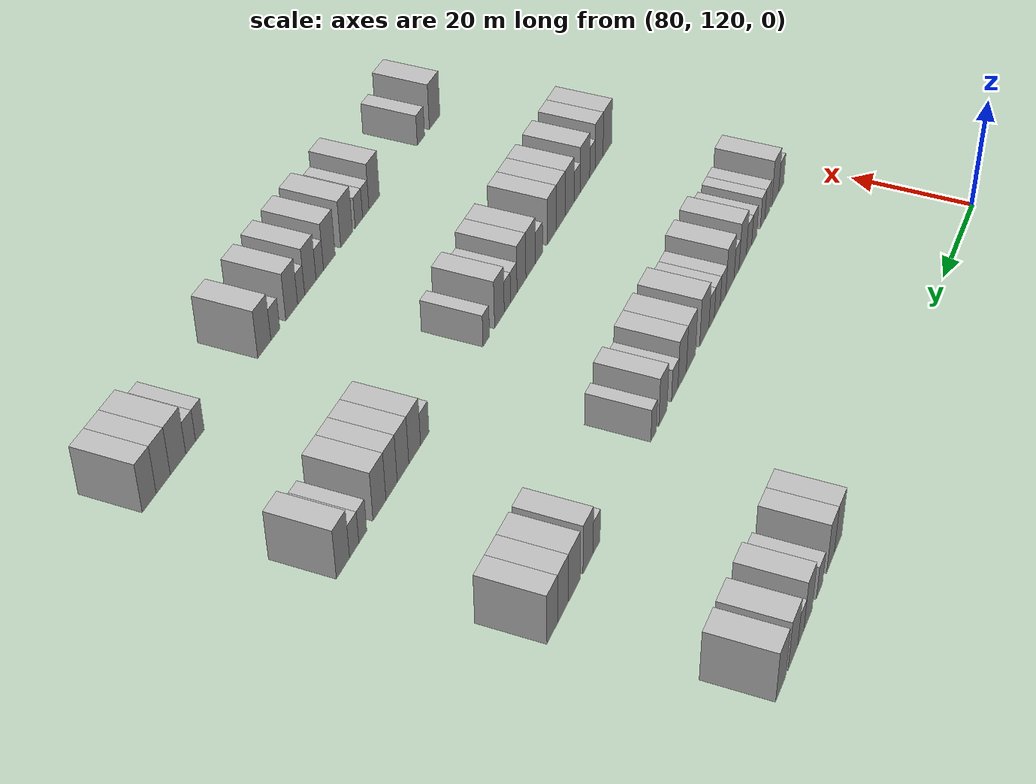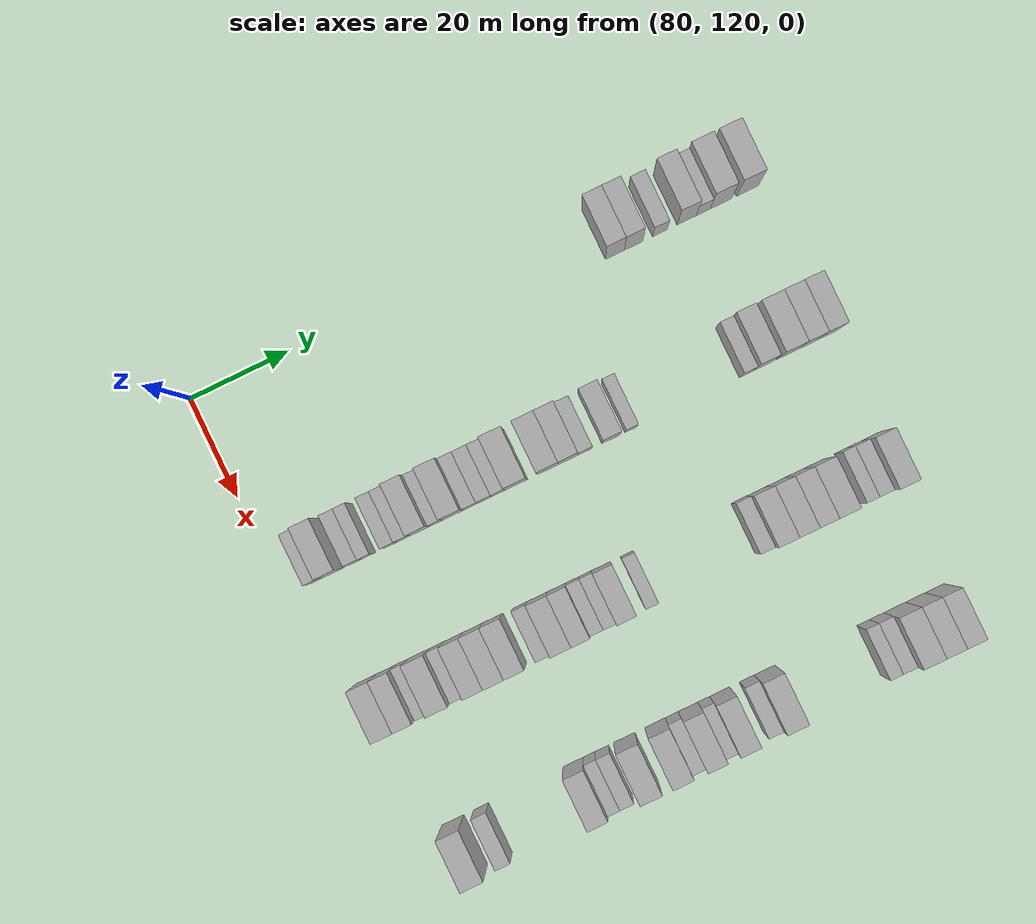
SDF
<sdf version="1.6">
 <world name="default">
  <model name="building_618">
   <static>1</static>
   <pose>85.0000 201.1404 0 0.000000 0.000000 0.000000</pose>
   <link name="link">
    <pose>0 0 4.50 0 0 0</pose>
    <collision name="collision"><geometry><box><size>10.0000 3.7968 9.0000</size></box></geometry></collision>
    <visual name="visual">
     <cast_shadows>0</cast_shadows>
     <geometry><box><size>10.0000 3.7968 9.0000</size></box></geometry>
     <material>
      <script>
       <uri>model://HANNAS_wall/materials/scripts</uri>
       <uri>model://HANNAS_wall/materials/textures</uri>
       <name>vrc/HANNAS_wall</name>
      </script>
     </material>
    </visual>
   </link>
  </model>
  <model name="building_619">
   <static>1</static>
   <pose>85.0000 204.8866 0 0.000000 0.000000 0.000000</pose>
   <link name="link">
    <pose>0 0 4.50 0 0 0</pose>
    <collision name="collision"><geometry><box><size>10.0000 3.6955 9.0000</size></box></geometry></collision>
    <visual name="visual">
     <cast_shadows>0</cast_shadows>
     <geometry><box><size>10.0000 3.6955 9.0000</size></box></geometry>
     <material>
      <script>
       <uri>model://HANNAS_wall/materials/scripts</uri>
       <uri>model://HANNAS_wall/materials/textures</uri>
       <name>vrc/HANNAS_wall</name>
      </script>
     </material>
    </visual>
   </link>
  </model>
  <model name="building_620">
   <static>1</static>
   <pose>85.0000 210.2190 0 0.000000 0.000000 0.000000</pose>
   <link name="link">
    <pose>0 0 3.00 0 0 0</pose>
    <collision name="collision"><geometry><box><size>10.0000 2.9693 6.0000</size></box></geometry></collision>
    <visual name="visual">
     <cast_shadows>0</cast_shadows>
     <geometry><box><size>10.0000 2.9693 6.0000</size></box></geometry>
     <material>
      <script>
       <uri>model://HANNAS_wall/materials/scripts</uri>
       <uri>model://HANNAS_wall/materials/textures</uri>
       <name>vrc/HANNAS_wall</name>
      </script>
     </material>
    </visual>
   </link>
  </model>
  <model name="building_621">
   <static>1</static>
   <pose>85.0000 215.6331 0 0.000000 0.000000 0.000000</pose>
   <link name="link">
    <pose>0 0 4.50 0 0 0</pose>
    <collision name="collision"><geometry><box><size>10.0000 3.8588 9.0000</size></box></geometry></collision>
    <visual name="visual">
     <cast_shadows>0</cast_shadows>
     <geometry><box><size>10.0000 3.8588 9.0000</size></box></geometry>
     <material>
      <script>
       <uri>model://HANNAS_wall/materials/scripts</uri>
       <uri>model://HANNAS_wall/materials/textures</uri>
       <name>vrc/HANNAS_wall</name>
      </script>
     </material>
    </visual>
   </link>
  </model>
  <model name="building_622">
   <static>1</static>
   <pose>85.0000 218.9543 0 0.000000 0.000000 0.000000</pose>
   <link name="link">
    <pose>0 0 3.00 0 0 0</pose>
    <collision name="collision"><geometry><box><size>10.0000 2.7835 6.0000</size></box></geometry></collision>
    <visual name="visual">
     <cast_shadows>0</cast_shadows>
     <geometry><box><size>10.0000 2.7835 6.0000</size></box></geometry>
     <material>
      <script>
       <uri>model://HANNAS_wall/materials/scripts</uri>
       <uri>model://HANNAS_wall/materials/textures</uri>
       <name>vrc/HANNAS_wall</name>
      </script>
     </material>
    </visual>
   </link>
  </model>
  <model name="building_623">
   <static>1</static>
   <pose>85.0000 222.5370 0 0.000000 0.000000 0.000000</pose>
   <link name="link">
    <pose>0 0 4.50 0 0 0</pose>
    <collision name="collision"><geometry><box><size>10.0000 4.3820 9.0000</size></box></geometry></collision>
    <visual name="visual">
     <cast_shadows>0</cast_shadows>
     <geometry><box><size>10.0000 4.3820 9.0000</size></box></geometry>
     <material>
      <script>
       <uri>model://HANNAS_wall/materials/scripts</uri>
       <uri>model://HANNAS_wall/materials/textures</uri>
       <name>vrc/HANNAS_wall</name>
      </script>
     </material>
    </visual>
   </link>
  </model>
  <model name="building_624">
   <static>1</static>
   <pose>85.0000 227.9235 0 0.000000 0.000000 0.000000</pose>
   <link name="link">
    <pose>0 0 4.50 0 0 0</pose>
    <collision name="collision"><geometry><box><size>10.0000 4.3911 9.0000</size></box></geometry></collision>
    <visual name="visual">
     <cast_shadows>0</cast_shadows>
     <geometry><box><size>10.0000 4.3911 9.0000</size></box></geometry>
     <material>
      <script>
       <uri>model://HANNAS_wall/materials/scripts</uri>
       <uri>model://HANNAS_wall/materials/textures</uri>
       <name>vrc/HANNAS_wall</name>
      </script>
     </material>
    </visual>
   </link>
  </model>
  <model name="building_833">
   <static>1</static>
   <pose>115.0000 126.8130 0 0.000000 0.000000 0.000000</pose>
   <link name="link">
    <pose>0 0 3.00 0 0 0</pose>
    <collision name="collision"><geometry><box><size>10.0000 2.8795 6.0000</size></box></geometry></collision>
    <visual name="visual">
     <cast_shadows>0</cast_shadows>
     <geometry><box><size>10.0000 2.8795 6.0000</size></box></geometry>
     <material>
      <script>
       <uri>model://HANNAS_wall/materials/scripts</uri>
       <uri>model://HANNAS_wall/materials/textures</uri>
       <name>vrc/HANNAS_wall</name>
      </script>
     </material>
    </visual>
   </link>
  </model>
  <model name="building_834">
   <static>1</static>
   <pose>115.0000 130.2182 0 0.000000 0.000000 0.000000</pose>
   <link name="link">
    <pose>0 0 4.50 0 0 0</pose>
    <collision name="collision"><geometry><box><size>10.0000 3.9309 9.0000</size></box></geometry></collision>
    <visual name="visual">
     <cast_shadows>0</cast_shadows>
     <geometry><box><size>10.0000 3.9309 9.0000</size></box></geometry>
     <material>
      <script>
       <uri>model://HANNAS_wall/materials/scripts</uri>
       <uri>model://HANNAS_wall/materials/textures</uri>
       <name>vrc/HANNAS_wall</name>
      </script>
     </material>
    </visual>
   </link>
  </model>
  <model name="building_835">
   <static>1</static>
   <pose>115.0000 134.5652 0 0.000000 0.000000 0.000000</pose>
   <link name="link">
    <pose>0 0 3.00 0 0 0</pose>
    <collision name="collision"><geometry><box><size>10.0000 2.7632 6.0000</size></box></geometry></collision>
    <visual name="visual">
     <cast_shadows>0</cast_shadows>
     <geometry><box><size>10.0000 2.7632 6.0000</size></box></geometry>
     <material>
      <script>
       <uri>model://HANNAS_wall/materials/scripts</uri>
       <uri>model://HANNAS_wall/materials/textures</uri>
       <name>vrc/HANNAS_wall</name>
      </script>
     </material>
    </visual>
   </link>
  </model>
  <model name="building_836">
   <static>1</static>
   <pose>115.0000 137.1600 0 0.000000 0.000000 0.000000</pose>
   <link name="link">
    <pose>0 0 3.00 0 0 0</pose>
    <collision name="collision"><geometry><box><size>10.0000 2.4263 6.0000</size></box></geometry></collision>
    <visual name="visual">
     <cast_shadows>0</cast_shadows>
     <geometry><box><size>10.0000 2.4263 6.0000</size></box></geometry>
     <material>
      <script>
       <uri>model://HANNAS_wall/materials/scripts</uri>
       <uri>model://HANNAS_wall/materials/textures</uri>
       <name>vrc/HANNAS_wall</name>
      </script>
     </material>
    </visual>
   </link>
  </model>
  <model name="building_837">
   <static>1</static>
   <pose>115.0000 141.7082 0 0.000000 0.000000 0.000000</pose>
   <link name="link">
    <pose>0 0 3.00 0 0 0</pose>
    <collision name="collision"><geometry><box><size>10.0000 2.6702 6.0000</size></box></geometry></collision>
    <visual name="visual">
     <cast_shadows>0</cast_shadows>
     <geometry><box><size>10.0000 2.6702 6.0000</size></box></geometry>
     <material>
      <script>
       <uri>model://HANNAS_wall/materials/scripts</uri>
       <uri>model://HANNAS_wall/materials/textures</uri>
       <name>vrc/HANNAS_wall</name>
      </script>
     </material>
    </visual>
   </link>
  </model>
  <model name="building_838">
   <static>1</static>
   <pose>115.0000 144.4526 0 0.000000 0.000000 0.000000</pose>
   <link name="link">
    <pose>0 0 3.00 0 0 0</pose>
    <collision name="collision"><geometry><box><size>10.0000 2.8187 6.0000</size></box></geometry></collision>
    <visual name="visual">
     <cast_shadows>0</cast_shadows>
     <geometry><box><size>10.0000 2.8187 6.0000</size></box></geometry>
     <material>
      <script>
       <uri>model://HANNAS_wall/materials/scripts</uri>
       <uri>model://HANNAS_wall/materials/textures</uri>
       <name>vrc/HANNAS_wall</name>
      </script>
     </material>
    </visual>
   </link>
  </model>
  <model name="building_839">
   <static>1</static>
   <pose>115.0000 147.7734 0 0.000000 0.000000 0.000000</pose>
   <link name="link">
    <pose>0 0 4.50 0 0 0</pose>
    <collision name="collision"><geometry><box><size>10.0000 3.8228 9.0000</size></box></geometry></collision>
    <visual name="visual">
     <cast_shadows>0</cast_shadows>
     <geometry><box><size>10.0000 3.8228 9.0000</size></box></geometry>
     <material>
      <script>
       <uri>model://HANNAS_wall/materials/scripts</uri>
       <uri>model://HANNAS_wall/materials/textures</uri>
       <name>vrc/HANNAS_wall</name>
      </script>
     </material>
    </visual>
   </link>
  </model>
  <model name="building_840">
   <static>1</static>
   <pose>115.0000 150.9600 0 0.000000 0.000000 0.000000</pose>
   <link name="link">
    <pose>0 0 3.00 0 0 0</pose>
    <collision name="collision"><geometry><box><size>10.0000 2.5504 6.0000</size></box></geometry></collision>
    <visual name="visual">
     <cast_shadows>0</cast_shadows>
     <geometry><box><size>10.0000 2.5504 6.0000</size></box></geometry>
     <material>
      <script>
       <uri>model://HANNAS_wall/materials/scripts</uri>
       <uri>model://HANNAS_wall/materials/textures</uri>
       <name>vrc/HANNAS_wall</name>
      </script>
     </material>
    </visual>
   </link>
  </model>
  <model name="building_841">
   <static>1</static>
   <pose>115.0000 154.3237 0 0.000000 0.000000 0.000000</pose>
   <link name="link">
    <pose>0 0 4.50 0 0 0</pose>
    <collision name="collision"><geometry><box><size>10.0000 4.1770 9.0000</size></box></geometry></collision>
    <visual name="visual">
     <cast_shadows>0</cast_shadows>
     <geometry><box><size>10.0000 4.1770 9.0000</size></box></geometry>
     <material>
      <script>
       <uri>model://HANNAS_wall/materials/scripts</uri>
       <uri>model://HANNAS_wall/materials/textures</uri>
       <name>vrc/HANNAS_wall</name>
      </script>
     </material>
    </visual>
   </link>
  </model>
  <model name="building_842">
   <static>1</static>
   <pose>115.0000 157.8071 0 0.000000 0.000000 0.000000</pose>
   <link name="link">
    <pose>0 0 3.00 0 0 0</pose>
    <collision name="collision"><geometry><box><size>10.0000 2.7897 6.0000</size></box></geometry></collision>
    <visual name="visual">
     <cast_shadows>0</cast_shadows>
     <geometry><box><size>10.0000 2.7897 6.0000</size></box></geometry>
     <material>
      <script>
       <uri>model://HANNAS_wall/materials/scripts</uri>
       <uri>model://HANNAS_wall/materials/textures</uri>
       <name>vrc/HANNAS_wall</name>
      </script>
     </material>
    </visual>
   </link>
  </model>
  <model name="building_843">
   <static>1</static>
   <pose>115.0000 160.6442 0 0.000000 0.000000 0.000000</pose>
   <link name="link">
    <pose>0 0 3.00 0 0 0</pose>
    <collision name="collision"><geometry><box><size>10.0000 2.8846 6.0000</size></box></geometry></collision>
    <visual name="visual">
     <cast_shadows>0</cast_shadows>
     <geometry><box><size>10.0000 2.8846 6.0000</size></box></geometry>
     <material>
      <script>
       <uri>model://HANNAS_wall/materials/scripts</uri>
       <uri>model://HANNAS_wall/materials/textures</uri>
       <name>vrc/HANNAS_wall</name>
      </script>
     </material>
    </visual>
   </link>
  </model>
  <model name="building_844">
   <static>1</static>
   <pose>115.0000 163.4074 0 0.000000 0.000000 0.000000</pose>
   <link name="link">
    <pose>0 0 3.00 0 0 0</pose>
    <collision name="collision"><geometry><box><size>10.0000 2.6419 6.0000</size></box></geometry></collision>
    <visual name="visual">
     <cast_shadows>0</cast_shadows>
     <geometry><box><size>10.0000 2.6419 6.0000</size></box></geometry>
     <material>
      <script>
       <uri>model://HANNAS_wall/materials/scripts</uri>
       <uri>model://HANNAS_wall/materials/textures</uri>
       <name>vrc/HANNAS_wall</name>
      </script>
     </material>
    </visual>
   </link>
  </model>
  <model name="building_845">
   <static>1</static>
   <pose>115.0000 166.9304 0 0.000000 0.000000 0.000000</pose>
   <link name="link">
    <pose>0 0 4.50 0 0 0</pose>
    <collision name="collision"><geometry><box><size>10.0000 4.4039 9.0000</size></box></geometry></collision>
    <visual name="visual">
     <cast_shadows>0</cast_shadows>
     <geometry><box><size>10.0000 4.4039 9.0000</size></box></geometry>
     <material>
      <script>
       <uri>model://HANNAS_wall/materials/scripts</uri>
       <uri>model://HANNAS_wall/materials/textures</uri>
       <name>vrc/HANNAS_wall</name>
      </script>
     </material>
    </visual>
   </link>
  </model>
  <model name="building_846">
   <static>1</static>
   <pose>115.0000 173.2552 0 0.000000 0.000000 0.000000</pose>
   <link name="link">
    <pose>0 0 4.50 0 0 0</pose>
    <collision name="collision"><geometry><box><size>10.0000 4.2457 9.0000</size></box></geometry></collision>
    <visual name="visual">
     <cast_shadows>0</cast_shadows>
     <geometry><box><size>10.0000 4.2457 9.0000</size></box></geometry>
     <material>
      <script>
       <uri>model://HANNAS_wall/materials/scripts</uri>
       <uri>model://HANNAS_wall/materials/textures</uri>
       <name>vrc/HANNAS_wall</name>
      </script>
     </material>
    </visual>
   </link>
  </model>
  <model name="building_847">
   <static>1</static>
   <pose>115.0000 177.3073 0 0.000000 0.000000 0.000000</pose>
   <link name="link">
    <pose>0 0 4.50 0 0 0</pose>
    <collision name="collision"><geometry><box><size>10.0000 3.8585 9.0000</size></box></geometry></collision>
    <visual name="visual">
     <cast_shadows>0</cast_shadows>
     <geometry><box><size>10.0000 3.8585 9.0000</size></box></geometry>
     <material>
      <script>
       <uri>model://HANNAS_wall/materials/scripts</uri>
       <uri>model://HANNAS_wall/materials/textures</uri>
       <name>vrc/HANNAS_wall</name>
      </script>
     </material>
    </visual>
   </link>
  </model>
  <model name="building_848">
   <static>1</static>
   <pose>115.0000 180.6676 0 0.000000 0.000000 0.000000</pose>
   <link name="link">
    <pose>0 0 3.00 0 0 0</pose>
    <collision name="collision"><geometry><box><size>10.0000 2.8622 6.0000</size></box></geometry></collision>
    <visual name="visual">
     <cast_shadows>0</cast_shadows>
     <geometry><box><size>10.0000 2.8622 6.0000</size></box></geometry>
     <material>
      <script>
       <uri>model://HANNAS_wall/materials/scripts</uri>
       <uri>model://HANNAS_wall/materials/textures</uri>
       <name>vrc/HANNAS_wall</name>
      </script>
     </material>
    </visual>
   </link>
  </model>
  <model name="building_849">
   <static>1</static>
   <pose>115.0000 185.9217 0 0.000000 0.000000 0.000000</pose>
   <link name="link">
    <pose>0 0 4.50 0 0 0</pose>
    <collision name="collision"><geometry><box><size>10.0000 3.6459 9.0000</size></box></geometry></collision>
    <visual name="visual">
     <cast_shadows>0</cast_shadows>
     <geometry><box><size>10.0000 3.6459 9.0000</size></box></geometry>
     <material>
      <script>
       <uri>model://HANNAS_wall/materials/scripts</uri>
       <uri>model://HANNAS_wall/materials/textures</uri>
       <name>vrc/HANNAS_wall</name>
      </script>
     </material>
    </visual>
   </link>
  </model>
  <model name="building_850">
   <static>1</static>
   <pose>115.0000 189.9450 0 0.000000 0.000000 0.000000</pose>
   <link name="link">
    <pose>0 0 3.00 0 0 0</pose>
    <collision name="collision"><geometry><box><size>10.0000 2.4007 6.0000</size></box></geometry></collision>
    <visual name="visual">
     <cast_shadows>0</cast_shadows>
     <geometry><box><size>10.0000 2.4007 6.0000</size></box></geometry>
     <material>
      <script>
       <uri>model://HANNAS_wall/materials/scripts</uri>
       <uri>model://HANNAS_wall/materials/textures</uri>
       <name>vrc/HANNAS_wall</name>
      </script>
     </material>
    </visual>
   </link>
  </model>
  <model name="building_851">
   <static>1</static>
   <pose>115.0000 213.2125 0 0.000000 0.000000 0.000000</pose>
   <link name="link">
    <pose>0 0 3.00 0 0 0</pose>
    <collision name="collision"><geometry><box><size>10.0000 2.7115 6.0000</size></box></geometry></collision>
    <visual name="visual">
     <cast_shadows>0</cast_shadows>
     <geometry><box><size>10.0000 2.7115 6.0000</size></box></geometry>
     <material>
      <script>
       <uri>model://HANNAS_wall/materials/scripts</uri>
       <uri>model://HANNAS_wall/materials/textures</uri>
       <name>vrc/HANNAS_wall</name>
      </script>
     </material>
    </visual>
   </link>
  </model>
  <model name="building_852">
   <static>1</static>
   <pose>115.0000 216.4924 0 0.000000 0.000000 0.000000</pose>
   <link name="link">
    <pose>0 0 4.50 0 0 0</pose>
    <collision name="collision"><geometry><box><size>10.0000 3.8482 9.0000</size></box></geometry></collision>
    <visual name="visual">
     <cast_shadows>0</cast_shadows>
     <geometry><box><size>10.0000 3.8482 9.0000</size></box></geometry>
     <material>
      <script>
       <uri>model://HANNAS_wall/materials/scripts</uri>
       <uri>model://HANNAS_wall/materials/textures</uri>
       <name>vrc/HANNAS_wall</name>
      </script>
     </material>
    </visual>
   </link>
  </model>
  <model name="building_853">
   <static>1</static>
   <pose>115.0000 221.6036 0 0.000000 0.000000 0.000000</pose>
   <link name="link">
    <pose>0 0 4.50 0 0 0</pose>
    <collision name="collision"><geometry><box><size>10.0000 4.3742 9.0000</size></box></geometry></collision>
    <visual name="visual">
     <cast_shadows>0</cast_shadows>
     <geometry><box><size>10.0000 4.3742 9.0000</size></box></geometry>
     <material>
      <script>
       <uri>model://HANNAS_wall/materials/scripts</uri>
       <uri>model://HANNAS_wall/materials/textures</uri>
       <name>vrc/HANNAS_wall</name>
      </script>
     </material>
    </visual>
   </link>
  </model>
  <model name="building_854">
   <static>1</static>
   <pose>115.0000 225.7387 0 0.000000 0.000000 0.000000</pose>
   <link name="link">
    <pose>0 0 4.50 0 0 0</pose>
    <collision name="collision"><geometry><box><size>10.0000 3.8961 9.0000</size></box></geometry></collision>
    <visual name="visual">
     <cast_shadows>0</cast_shadows>
     <geometry><box><size>10.0000 3.8961 9.0000</size></box></geometry>
     <material>
      <script>
       <uri>model://HANNAS_wall/materials/scripts</uri>
       <uri>model://HANNAS_wall/materials/textures</uri>
       <name>vrc/HANNAS_wall</name>
      </script>
     </material>
    </visual>
   </link>
  </model>
  <model name="building_855">
   <static>1</static>
   <pose>115.0000 229.5878 0 0.000000 0.000000 0.000000</pose>
   <link name="link">
    <pose>0 0 4.50 0 0 0</pose>
    <collision name="collision"><geometry><box><size>10.0000 3.8019 9.0000</size></box></geometry></collision>
    <visual name="visual">
     <cast_shadows>0</cast_shadows>
     <geometry><box><size>10.0000 3.8019 9.0000</size></box></geometry>
     <material>
      <script>
       <uri>model://HANNAS_wall/materials/scripts</uri>
       <uri>model://HANNAS_wall/materials/textures</uri>
       <name>vrc/HANNAS_wall</name>
      </script>
     </material>
    </visual>
   </link>
  </model>
  <model name="building_1059">
   <static>1</static>
   <pose>145.0000 126.9567 0 0.000000 0.000000 0.000000</pose>
   <link name="link">
    <pose>0 0 4.50 0 0 0</pose>
    <collision name="collision"><geometry><box><size>10.0000 4.1968 9.0000</size></box></geometry></collision>
    <visual name="visual">
     <cast_shadows>0</cast_shadows>
     <geometry><box><size>10.0000 4.1968 9.0000</size></box></geometry>
     <material>
      <script>
       <uri>model://HANNAS_wall/materials/scripts</uri>
       <uri>model://HANNAS_wall/materials/textures</uri>
       <name>vrc/HANNAS_wall</name>
      </script>
     </material>
    </visual>
   </link>
  </model>
  <model name="building_1060">
   <static>1</static>
   <pose>145.0000 130.9338 0 0.000000 0.000000 0.000000</pose>
   <link name="link">
    <pose>0 0 4.50 0 0 0</pose>
    <collision name="collision"><geometry><box><size>10.0000 3.7574 9.0000</size></box></geometry></collision>
    <visual name="visual">
     <cast_shadows>0</cast_shadows>
     <geometry><box><size>10.0000 3.7574 9.0000</size></box></geometry>
     <material>
      <script>
       <uri>model://HANNAS_wall/materials/scripts</uri>
       <uri>model://HANNAS_wall/materials/textures</uri>
       <name>vrc/HANNAS_wall</name>
      </script>
     </material>
    </visual>
   </link>
  </model>
  <model name="building_1061">
   <static>1</static>
   <pose>145.0000 134.0910 0 0.000000 0.000000 0.000000</pose>
   <link name="link">
    <pose>0 0 3.00 0 0 0</pose>
    <collision name="collision"><geometry><box><size>10.0000 2.5570 6.0000</size></box></geometry></collision>
    <visual name="visual">
     <cast_shadows>0</cast_shadows>
     <geometry><box><size>10.0000 2.5570 6.0000</size></box></geometry>
     <material>
      <script>
       <uri>model://HANNAS_wall/materials/scripts</uri>
       <uri>model://HANNAS_wall/materials/textures</uri>
       <name>vrc/HANNAS_wall</name>
      </script>
     </material>
    </visual>
   </link>
  </model>
  <model name="building_1062">
   <static>1</static>
   <pose>145.0000 137.5395 0 0.000000 0.000000 0.000000</pose>
   <link name="link">
    <pose>0 0 4.50 0 0 0</pose>
    <collision name="collision"><geometry><box><size>10.0000 4.3401 9.0000</size></box></geometry></collision>
    <visual name="visual">
     <cast_shadows>0</cast_shadows>
     <geometry><box><size>10.0000 4.3401 9.0000</size></box></geometry>
     <material>
      <script>
       <uri>model://HANNAS_wall/materials/scripts</uri>
       <uri>model://HANNAS_wall/materials/textures</uri>
       <name>vrc/HANNAS_wall</name>
      </script>
     </material>
    </visual>
   </link>
  </model>
  <model name="building_1063">
   <static>1</static>
   <pose>145.0000 141.1233 0 0.000000 0.000000 0.000000</pose>
   <link name="link">
    <pose>0 0 3.00 0 0 0</pose>
    <collision name="collision"><geometry><box><size>10.0000 2.8275 6.0000</size></box></geometry></collision>
    <visual name="visual">
     <cast_shadows>0</cast_shadows>
     <geometry><box><size>10.0000 2.8275 6.0000</size></box></geometry>
     <material>
      <script>
       <uri>model://HANNAS_wall/materials/scripts</uri>
       <uri>model://HANNAS_wall/materials/textures</uri>
       <name>vrc/HANNAS_wall</name>
      </script>
     </material>
    </visual>
   </link>
  </model>
  <model name="building_1064">
   <static>1</static>
   <pose>145.0000 144.5191 0 0.000000 0.000000 0.000000</pose>
   <link name="link">
    <pose>0 0 4.50 0 0 0</pose>
    <collision name="collision"><geometry><box><size>10.0000 3.9641 9.0000</size></box></geometry></collision>
    <visual name="visual">
     <cast_shadows>0</cast_shadows>
     <geometry><box><size>10.0000 3.9641 9.0000</size></box></geometry>
     <material>
      <script>
       <uri>model://HANNAS_wall/materials/scripts</uri>
       <uri>model://HANNAS_wall/materials/textures</uri>
       <name>vrc/HANNAS_wall</name>
      </script>
     </material>
    </visual>
   </link>
  </model>
  <model name="building_1065">
   <static>1</static>
   <pose>145.0000 148.5007 0 0.000000 0.000000 0.000000</pose>
   <link name="link">
    <pose>0 0 4.50 0 0 0</pose>
    <collision name="collision"><geometry><box><size>10.0000 3.9990 9.0000</size></box></geometry></collision>
    <visual name="visual">
     <cast_shadows>0</cast_shadows>
     <geometry><box><size>10.0000 3.9990 9.0000</size></box></geometry>
     <material>
      <script>
       <uri>model://HANNAS_wall/materials/scripts</uri>
       <uri>model://HANNAS_wall/materials/textures</uri>
       <name>vrc/HANNAS_wall</name>
      </script>
     </material>
    </visual>
   </link>
  </model>
  <model name="building_1066">
   <static>1</static>
   <pose>145.0000 152.4788 0 0.000000 0.000000 0.000000</pose>
   <link name="link">
    <pose>0 0 4.50 0 0 0</pose>
    <collision name="collision"><geometry><box><size>10.0000 3.9574 9.0000</size></box></geometry></collision>
    <visual name="visual">
     <cast_shadows>0</cast_shadows>
     <geometry><box><size>10.0000 3.9574 9.0000</size></box></geometry>
     <material>
      <script>
       <uri>model://HANNAS_wall/materials/scripts</uri>
       <uri>model://HANNAS_wall/materials/textures</uri>
       <name>vrc/HANNAS_wall</name>
      </script>
     </material>
    </visual>
   </link>
  </model>
  <model name="building_1067">
   <static>1</static>
   <pose>145.0000 157.9390 0 0.000000 0.000000 0.000000</pose>
   <link name="link">
    <pose>0 0 3.00 0 0 0</pose>
    <collision name="collision"><geometry><box><size>10.0000 2.9630 6.0000</size></box></geometry></collision>
    <visual name="visual">
     <cast_shadows>0</cast_shadows>
     <geometry><box><size>10.0000 2.9630 6.0000</size></box></geometry>
     <material>
      <script>
       <uri>model://HANNAS_wall/materials/scripts</uri>
       <uri>model://HANNAS_wall/materials/textures</uri>
       <name>vrc/HANNAS_wall</name>
      </script>
     </material>
    </visual>
   </link>
  </model>
  <model name="building_1068">
   <static>1</static>
   <pose>145.0000 161.4525 0 0.000000 0.000000 0.000000</pose>
   <link name="link">
    <pose>0 0 4.50 0 0 0</pose>
    <collision name="collision"><geometry><box><size>10.0000 4.0641 9.0000</size></box></geometry></collision>
    <visual name="visual">
     <cast_shadows>0</cast_shadows>
     <geometry><box><size>10.0000 4.0641 9.0000</size></box></geometry>
     <material>
      <script>
       <uri>model://HANNAS_wall/materials/scripts</uri>
       <uri>model://HANNAS_wall/materials/textures</uri>
       <name>vrc/HANNAS_wall</name>
      </script>
     </material>
    </visual>
   </link>
  </model>
  <model name="building_1069">
   <static>1</static>
   <pose>145.0000 165.3126 0 0.000000 0.000000 0.000000</pose>
   <link name="link">
    <pose>0 0 4.50 0 0 0</pose>
    <collision name="collision"><geometry><box><size>10.0000 3.6560 9.0000</size></box></geometry></collision>
    <visual name="visual">
     <cast_shadows>0</cast_shadows>
     <geometry><box><size>10.0000 3.6560 9.0000</size></box></geometry>
     <material>
      <script>
       <uri>model://HANNAS_wall/materials/scripts</uri>
       <uri>model://HANNAS_wall/materials/textures</uri>
       <name>vrc/HANNAS_wall</name>
      </script>
     </material>
    </visual>
   </link>
  </model>
  <model name="building_1070">
   <static>1</static>
   <pose>145.0000 168.4575 0 0.000000 0.000000 0.000000</pose>
   <link name="link">
    <pose>0 0 3.00 0 0 0</pose>
    <collision name="collision"><geometry><box><size>10.0000 2.6338 6.0000</size></box></geometry></collision>
    <visual name="visual">
     <cast_shadows>0</cast_shadows>
     <geometry><box><size>10.0000 2.6338 6.0000</size></box></geometry>
     <material>
      <script>
       <uri>model://HANNAS_wall/materials/scripts</uri>
       <uri>model://HANNAS_wall/materials/textures</uri>
       <name>vrc/HANNAS_wall</name>
      </script>
     </material>
    </visual>
   </link>
  </model>
  <model name="building_1071">
   <static>1</static>
   <pose>145.0000 171.0431 0 0.000000 0.000000 0.000000</pose>
   <link name="link">
    <pose>0 0 3.00 0 0 0</pose>
    <collision name="collision"><geometry><box><size>10.0000 2.5373 6.0000</size></box></geometry></collision>
    <visual name="visual">
     <cast_shadows>0</cast_shadows>
     <geometry><box><size>10.0000 2.5373 6.0000</size></box></geometry>
     <material>
      <script>
       <uri>model://HANNAS_wall/materials/scripts</uri>
       <uri>model://HANNAS_wall/materials/textures</uri>
       <name>vrc/HANNAS_wall</name>
      </script>
     </material>
    </visual>
   </link>
  </model>
  <model name="building_1072">
   <static>1</static>
   <pose>145.0000 174.2312 0 0.000000 0.000000 0.000000</pose>
   <link name="link">
    <pose>0 0 4.50 0 0 0</pose>
    <collision name="collision"><geometry><box><size>10.0000 3.8390 9.0000</size></box></geometry></collision>
    <visual name="visual">
     <cast_shadows>0</cast_shadows>
     <geometry><box><size>10.0000 3.8390 9.0000</size></box></geometry>
     <material>
      <script>
       <uri>model://HANNAS_wall/materials/scripts</uri>
       <uri>model://HANNAS_wall/materials/textures</uri>
       <name>vrc/HANNAS_wall</name>
      </script>
     </material>
    </visual>
   </link>
  </model>
  <model name="building_1073">
   <static>1</static>
   <pose>145.0000 179.4030 0 0.000000 0.000000 0.000000</pose>
   <link name="link">
    <pose>0 0 3.00 0 0 0</pose>
    <collision name="collision"><geometry><box><size>10.0000 2.5045 6.0000</size></box></geometry></collision>
    <visual name="visual">
     <cast_shadows>0</cast_shadows>
     <geometry><box><size>10.0000 2.5045 6.0000</size></box></geometry>
     <material>
      <script>
       <uri>model://HANNAS_wall/materials/scripts</uri>
       <uri>model://HANNAS_wall/materials/textures</uri>
       <name>vrc/HANNAS_wall</name>
      </script>
     </material>
    </visual>
   </link>
  </model>
  <model name="building_1074">
   <static>1</static>
   <pose>145.0000 202.0396 0 0.000000 0.000000 0.000000</pose>
   <link name="link">
    <pose>0 0 3.00 0 0 0</pose>
    <collision name="collision"><geometry><box><size>10.0000 2.9229 6.0000</size></box></geometry></collision>
    <visual name="visual">
     <cast_shadows>0</cast_shadows>
     <geometry><box><size>10.0000 2.9229 6.0000</size></box></geometry>
     <material>
      <script>
       <uri>model://HANNAS_wall/materials/scripts</uri>
       <uri>model://HANNAS_wall/materials/textures</uri>
       <name>vrc/HANNAS_wall</name>
      </script>
     </material>
    </visual>
   </link>
  </model>
  <model name="building_1075">
   <static>1</static>
   <pose>145.0000 205.5326 0 0.000000 0.000000 0.000000</pose>
   <link name="link">
    <pose>0 0 4.50 0 0 0</pose>
    <collision name="collision"><geometry><box><size>10.0000 4.0632 9.0000</size></box></geometry></collision>
    <visual name="visual">
     <cast_shadows>0</cast_shadows>
     <geometry><box><size>10.0000 4.0632 9.0000</size></box></geometry>
     <material>
      <script>
       <uri>model://HANNAS_wall/materials/scripts</uri>
       <uri>model://HANNAS_wall/materials/textures</uri>
       <name>vrc/HANNAS_wall</name>
      </script>
     </material>
    </visual>
   </link>
  </model>
  <model name="building_1076">
   <static>1</static>
   <pose>145.0000 209.5156 0 0.000000 0.000000 0.000000</pose>
   <link name="link">
    <pose>0 0 4.50 0 0 0</pose>
    <collision name="collision"><geometry><box><size>10.0000 3.9028 9.0000</size></box></geometry></collision>
    <visual name="visual">
     <cast_shadows>0</cast_shadows>
     <geometry><box><size>10.0000 3.9028 9.0000</size></box></geometry>
     <material>
      <script>
       <uri>model://HANNAS_wall/materials/scripts</uri>
       <uri>model://HANNAS_wall/materials/textures</uri>
       <name>vrc/HANNAS_wall</name>
      </script>
     </material>
    </visual>
   </link>
  </model>
  <model name="building_1077">
   <static>1</static>
   <pose>145.0000 213.3428 0 0.000000 0.000000 0.000000</pose>
   <link name="link">
    <pose>0 0 4.50 0 0 0</pose>
    <collision name="collision"><geometry><box><size>10.0000 3.7516 9.0000</size></box></geometry></collision>
    <visual name="visual">
     <cast_shadows>0</cast_shadows>
     <geometry><box><size>10.0000 3.7516 9.0000</size></box></geometry>
     <material>
      <script>
       <uri>model://HANNAS_wall/materials/scripts</uri>
       <uri>model://HANNAS_wall/materials/textures</uri>
       <name>vrc/HANNAS_wall</name>
      </script>
     </material>
    </visual>
   </link>
  </model>
  <model name="building_1078">
   <static>1</static>
   <pose>145.0000 217.3261 0 0.000000 0.000000 0.000000</pose>
   <link name="link">
    <pose>0 0 4.50 0 0 0</pose>
    <collision name="collision"><geometry><box><size>10.0000 4.2150 9.0000</size></box></geometry></collision>
    <visual name="visual">
     <cast_shadows>0</cast_shadows>
     <geometry><box><size>10.0000 4.2150 9.0000</size></box></geometry>
     <material>
      <script>
       <uri>model://HANNAS_wall/materials/scripts</uri>
       <uri>model://HANNAS_wall/materials/textures</uri>
       <name>vrc/HANNAS_wall</name>
      </script>
     </material>
    </visual>
   </link>
  </model>
  <model name="building_1079">
   <static>1</static>
   <pose>145.0000 222.6815 0 0.000000 0.000000 0.000000</pose>
   <link name="link">
    <pose>0 0 3.00 0 0 0</pose>
    <collision name="collision"><geometry><box><size>10.0000 2.4959 6.0000</size></box></geometry></collision>
    <visual name="visual">
     <cast_shadows>0</cast_shadows>
     <geometry><box><size>10.0000 2.4959 6.0000</size></box></geometry>
     <material>
      <script>
       <uri>model://HANNAS_wall/materials/scripts</uri>
       <uri>model://HANNAS_wall/materials/textures</uri>
       <name>vrc/HANNAS_wall</name>
      </script>
     </material>
    </visual>
   </link>
  </model>
  <model name="building_1080">
   <static>1</static>
   <pose>145.0000 225.3848 0 0.000000 0.000000 0.000000</pose>
   <link name="link">
    <pose>0 0 3.00 0 0 0</pose>
    <collision name="collision"><geometry><box><size>10.0000 2.9105 6.0000</size></box></geometry></collision>
    <visual name="visual">
     <cast_shadows>0</cast_shadows>
     <geometry><box><size>10.0000 2.9105 6.0000</size></box></geometry>
     <material>
      <script>
       <uri>model://HANNAS_wall/materials/scripts</uri>
       <uri>model://HANNAS_wall/materials/textures</uri>
       <name>vrc/HANNAS_wall</name>
      </script>
     </material>
    </visual>
   </link>
  </model>
  <model name="building_1081">
   <static>1</static>
   <pose>145.0000 228.8648 0 0.000000 0.000000 0.000000</pose>
   <link name="link">
    <pose>0 0 4.50 0 0 0</pose>
    <collision name="collision"><geometry><box><size>10.0000 4.0496 9.0000</size></box></geometry></collision>
    <visual name="visual">
     <cast_shadows>0</cast_shadows>
     <geometry><box><size>10.0000 4.0496 9.0000</size></box></geometry>
     <material>
      <script>
       <uri>model://HANNAS_wall/materials/scripts</uri>
       <uri>model://HANNAS_wall/materials/textures</uri>
       <name>vrc/HANNAS_wall</name>
      </script>
     </material>
    </visual>
   </link>
  </model>
  <model name="building_1287">
   <static>1</static>
   <pose>175.0000 129.9083 0 0.000000 0.000000 0.000000</pose>
   <link name="link">
    <pose>0 0 4.50 0 0 0</pose>
    <collision name="collision"><geometry><box><size>10.0000 4.4416 9.0000</size></box></geometry></collision>
    <visual name="visual">
     <cast_shadows>0</cast_shadows>
     <geometry><box><size>10.0000 4.4416 9.0000</size></box></geometry>
     <material>
      <script>
       <uri>model://HANNAS_wall/materials/scripts</uri>
       <uri>model://HANNAS_wall/materials/textures</uri>
       <name>vrc/HANNAS_wall</name>
      </script>
     </material>
    </visual>
   </link>
  </model>
  <model name="building_1288">
   <static>1</static>
   <pose>175.0000 135.6272 0 0.000000 0.000000 0.000000</pose>
   <link name="link">
    <pose>0 0 3.00 0 0 0</pose>
    <collision name="collision"><geometry><box><size>10.0000 2.9961 6.0000</size></box></geometry></collision>
    <visual name="visual">
     <cast_shadows>0</cast_shadows>
     <geometry><box><size>10.0000 2.9961 6.0000</size></box></geometry>
     <material>
      <script>
       <uri>model://HANNAS_wall/materials/scripts</uri>
       <uri>model://HANNAS_wall/materials/textures</uri>
       <name>vrc/HANNAS_wall</name>
      </script>
     </material>
    </visual>
   </link>
  </model>
  <model name="building_1289">
   <static>1</static>
   <pose>175.0000 154.1642 0 0.000000 0.000000 0.000000</pose>
   <link name="link">
    <pose>0 0 4.50 0 0 0</pose>
    <collision name="collision"><geometry><box><size>10.0000 4.0259 9.0000</size></box></geometry></collision>
    <visual name="visual">
     <cast_shadows>0</cast_shadows>
     <geometry><box><size>10.0000 4.0259 9.0000</size></box></geometry>
     <material>
      <script>
       <uri>model://HANNAS_wall/materials/scripts</uri>
       <uri>model://HANNAS_wall/materials/textures</uri>
       <name>vrc/HANNAS_wall</name>
      </script>
     </material>
    </visual>
   </link>
  </model>
  <model name="building_1290">
   <static>1</static>
   <pose>175.0000 157.3793 0 0.000000 0.000000 0.000000</pose>
   <link name="link">
    <pose>0 0 3.00 0 0 0</pose>
    <collision name="collision"><geometry><box><size>10.0000 2.4044 6.0000</size></box></geometry></collision>
    <visual name="visual">
     <cast_shadows>0</cast_shadows>
     <geometry><box><size>10.0000 2.4044 6.0000</size></box></geometry>
     <material>
      <script>
       <uri>model://HANNAS_wall/materials/scripts</uri>
       <uri>model://HANNAS_wall/materials/textures</uri>
       <name>vrc/HANNAS_wall</name>
      </script>
     </material>
    </visual>
   </link>
  </model>
  <model name="building_1291">
   <static>1</static>
   <pose>175.0000 159.9736 0 0.000000 0.000000 0.000000</pose>
   <link name="link">
    <pose>0 0 3.00 0 0 0</pose>
    <collision name="collision"><geometry><box><size>10.0000 2.7842 6.0000</size></box></geometry></collision>
    <visual name="visual">
     <cast_shadows>0</cast_shadows>
     <geometry><box><size>10.0000 2.7842 6.0000</size></box></geometry>
     <material>
      <script>
       <uri>model://HANNAS_wall/materials/scripts</uri>
       <uri>model://HANNAS_wall/materials/textures</uri>
       <name>vrc/HANNAS_wall</name>
      </script>
     </material>
    </visual>
   </link>
  </model>
  <model name="building_1292">
   <static>1</static>
   <pose>175.0000 164.5185 0 0.000000 0.000000 0.000000</pose>
   <link name="link">
    <pose>0 0 4.50 0 0 0</pose>
    <collision name="collision"><geometry><box><size>10.0000 4.3055 9.0000</size></box></geometry></collision>
    <visual name="visual">
     <cast_shadows>0</cast_shadows>
     <geometry><box><size>10.0000 4.3055 9.0000</size></box></geometry>
     <material>
      <script>
       <uri>model://HANNAS_wall/materials/scripts</uri>
       <uri>model://HANNAS_wall/materials/textures</uri>
       <name>vrc/HANNAS_wall</name>
      </script>
     </material>
    </visual>
   </link>
  </model>
  <model name="building_1293">
   <static>1</static>
   <pose>175.0000 170.7411 0 0.000000 0.000000 0.000000</pose>
   <link name="link">
    <pose>0 0 4.50 0 0 0</pose>
    <collision name="collision"><geometry><box><size>10.0000 4.1398 9.0000</size></box></geometry></collision>
    <visual name="visual">
     <cast_shadows>0</cast_shadows>
     <geometry><box><size>10.0000 4.1398 9.0000</size></box></geometry>
     <material>
      <script>
       <uri>model://HANNAS_wall/materials/scripts</uri>
       <uri>model://HANNAS_wall/materials/textures</uri>
       <name>vrc/HANNAS_wall</name>
      </script>
     </material>
    </visual>
   </link>
  </model>
  <model name="building_1294">
   <static>1</static>
   <pose>175.0000 174.1256 0 0.000000 0.000000 0.000000</pose>
   <link name="link">
    <pose>0 0 3.00 0 0 0</pose>
    <collision name="collision"><geometry><box><size>10.0000 2.6292 6.0000</size></box></geometry></collision>
    <visual name="visual">
     <cast_shadows>0</cast_shadows>
     <geometry><box><size>10.0000 2.6292 6.0000</size></box></geometry>
     <material>
      <script>
       <uri>model://HANNAS_wall/materials/scripts</uri>
       <uri>model://HANNAS_wall/materials/textures</uri>
       <name>vrc/HANNAS_wall</name>
      </script>
     </material>
    </visual>
   </link>
  </model>
  <model name="building_1295">
   <static>1</static>
   <pose>175.0000 177.4079 0 0.000000 0.000000 0.000000</pose>
   <link name="link">
    <pose>0 0 4.50 0 0 0</pose>
    <collision name="collision"><geometry><box><size>10.0000 3.9355 9.0000</size></box></geometry></collision>
    <visual name="visual">
     <cast_shadows>0</cast_shadows>
     <geometry><box><size>10.0000 3.9355 9.0000</size></box></geometry>
     <material>
      <script>
       <uri>model://HANNAS_wall/materials/scripts</uri>
       <uri>model://HANNAS_wall/materials/textures</uri>
       <name>vrc/HANNAS_wall</name>
      </script>
     </material>
    </visual>
   </link>
  </model>
  <model name="building_1296">
   <static>1</static>
   <pose>175.0000 180.5802 0 0.000000 0.000000 0.000000</pose>
   <link name="link">
    <pose>0 0 3.00 0 0 0</pose>
    <collision name="collision"><geometry><box><size>10.0000 2.4091 6.0000</size></box></geometry></collision>
    <visual name="visual">
     <cast_shadows>0</cast_shadows>
     <geometry><box><size>10.0000 2.4091 6.0000</size></box></geometry>
     <material>
      <script>
       <uri>model://HANNAS_wall/materials/scripts</uri>
       <uri>model://HANNAS_wall/materials/textures</uri>
       <name>vrc/HANNAS_wall</name>
      </script>
     </material>
    </visual>
   </link>
  </model>
  <model name="building_1297">
   <static>1</static>
   <pose>175.0000 183.7931 0 0.000000 0.000000 0.000000</pose>
   <link name="link">
    <pose>0 0 4.50 0 0 0</pose>
    <collision name="collision"><geometry><box><size>10.0000 4.0166 9.0000</size></box></geometry></collision>
    <visual name="visual">
     <cast_shadows>0</cast_shadows>
     <geometry><box><size>10.0000 4.0166 9.0000</size></box></geometry>
     <material>
      <script>
       <uri>model://HANNAS_wall/materials/scripts</uri>
       <uri>model://HANNAS_wall/materials/textures</uri>
       <name>vrc/HANNAS_wall</name>
      </script>
     </material>
    </visual>
   </link>
  </model>
  <model name="building_1298">
   <static>1</static>
   <pose>175.0000 189.2656 0 0.000000 0.000000 0.000000</pose>
   <link name="link">
    <pose>0 0 3.00 0 0 0</pose>
    <collision name="collision"><geometry><box><size>10.0000 2.9283 6.0000</size></box></geometry></collision>
    <visual name="visual">
     <cast_shadows>0</cast_shadows>
     <geometry><box><size>10.0000 2.9283 6.0000</size></box></geometry>
     <material>
      <script>
       <uri>model://HANNAS_wall/materials/scripts</uri>
       <uri>model://HANNAS_wall/materials/textures</uri>
       <name>vrc/HANNAS_wall</name>
      </script>
     </material>
    </visual>
   </link>
  </model>
  <model name="building_1299">
   <static>1</static>
   <pose>175.0000 192.8656 0 0.000000 0.000000 0.000000</pose>
   <link name="link">
    <pose>0 0 4.50 0 0 0</pose>
    <collision name="collision"><geometry><box><size>10.0000 4.2716 9.0000</size></box></geometry></collision>
    <visual name="visual">
     <cast_shadows>0</cast_shadows>
     <geometry><box><size>10.0000 4.2716 9.0000</size></box></geometry>
     <material>
      <script>
       <uri>model://HANNAS_wall/materials/scripts</uri>
       <uri>model://HANNAS_wall/materials/textures</uri>
       <name>vrc/HANNAS_wall</name>
      </script>
     </material>
    </visual>
   </link>
  </model>
  <model name="building_1300">
   <static>1</static>
   <pose>175.0000 212.8327 0 0.000000 0.000000 0.000000</pose>
   <link name="link">
    <pose>0 0 3.00 0 0 0</pose>
    <collision name="collision"><geometry><box><size>10.0000 2.5542 6.0000</size></box></geometry></collision>
    <visual name="visual">
     <cast_shadows>0</cast_shadows>
     <geometry><box><size>10.0000 2.5542 6.0000</size></box></geometry>
     <material>
      <script>
       <uri>model://HANNAS_wall/materials/scripts</uri>
       <uri>model://HANNAS_wall/materials/textures</uri>
       <name>vrc/HANNAS_wall</name>
      </script>
     </material>
    </visual>
   </link>
  </model>
  <model name="building_1301">
   <static>1</static>
   <pose>175.0000 215.5363 0 0.000000 0.000000 0.000000</pose>
   <link name="link">
    <pose>0 0 3.00 0 0 0</pose>
    <collision name="collision"><geometry><box><size>10.0000 2.8530 6.0000</size></box></geometry></collision>
    <visual name="visual">
     <cast_shadows>0</cast_shadows>
     <geometry><box><size>10.0000 2.8530 6.0000</size></box></geometry>
     <material>
      <script>
       <uri>model://HANNAS_wall/materials/scripts</uri>
       <uri>model://HANNAS_wall/materials/textures</uri>
       <name>vrc/HANNAS_wall</name>
      </script>
     </material>
    </visual>
   </link>
  </model>
  <model name="building_1302">
   <static>1</static>
   <pose>175.0000 219.1834 0 0.000000 0.000000 0.000000</pose>
   <link name="link">
    <pose>0 0 4.50 0 0 0</pose>
    <collision name="collision"><geometry><box><size>10.0000 4.4413 9.0000</size></box></geometry></collision>
    <visual name="visual">
     <cast_shadows>0</cast_shadows>
     <geometry><box><size>10.0000 4.4413 9.0000</size></box></geometry>
     <material>
      <script>
       <uri>model://HANNAS_wall/materials/scripts</uri>
       <uri>model://HANNAS_wall/materials/textures</uri>
       <name>vrc/HANNAS_wall</name>
      </script>
     </material>
    </visual>
   </link>
  </model>
  <model name="building_1303">
   <static>1</static>
   <pose>175.0000 223.3867 0 0.000000 0.000000 0.000000</pose>
   <link name="link">
    <pose>0 0 4.50 0 0 0</pose>
    <collision name="collision"><geometry><box><size>10.0000 3.9653 9.0000</size></box></geometry></collision>
    <visual name="visual">
     <cast_shadows>0</cast_shadows>
     <geometry><box><size>10.0000 3.9653 9.0000</size></box></geometry>
     <material>
      <script>
       <uri>model://HANNAS_wall/materials/scripts</uri>
       <uri>model://HANNAS_wall/materials/textures</uri>
       <name>vrc/HANNAS_wall</name>
      </script>
     </material>
    </visual>
   </link>
  </model>
  <model name="building_1304">
   <static>1</static>
   <pose>175.0000 227.3100 0 0.000000 0.000000 0.000000</pose>
   <link name="link">
    <pose>0 0 4.50 0 0 0</pose>
    <collision name="collision"><geometry><box><size>10.0000 3.8814 9.0000</size></box></geometry></collision>
    <visual name="visual">
     <cast_shadows>0</cast_shadows>
     <geometry><box><size>10.0000 3.8814 9.0000</size></box></geometry>
     <material>
      <script>
       <uri>model://HANNAS_wall/materials/scripts</uri>
       <uri>model://HANNAS_wall/materials/textures</uri>
       <name>vrc/HANNAS_wall</name>
      </script>
     </material>
    </visual>
   </link>
  </model>
 </world>
</sdf>
